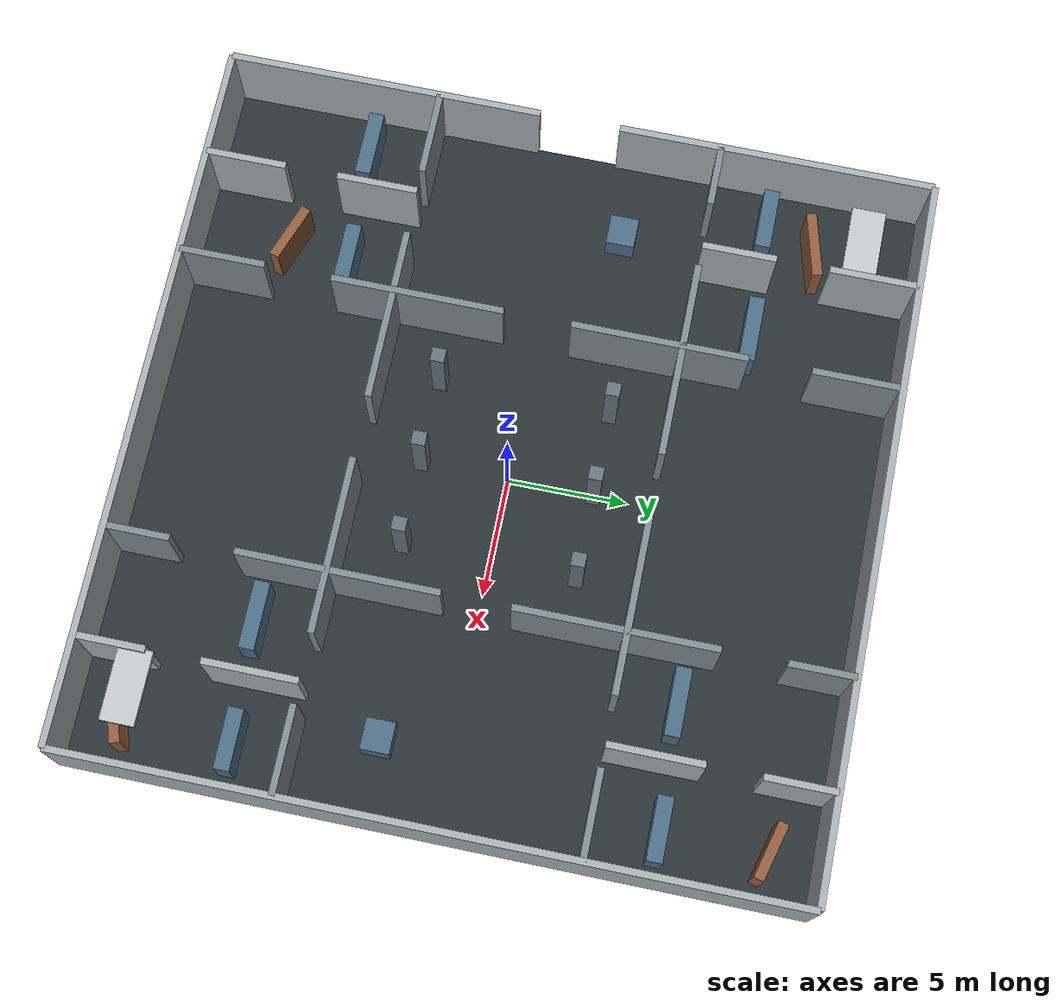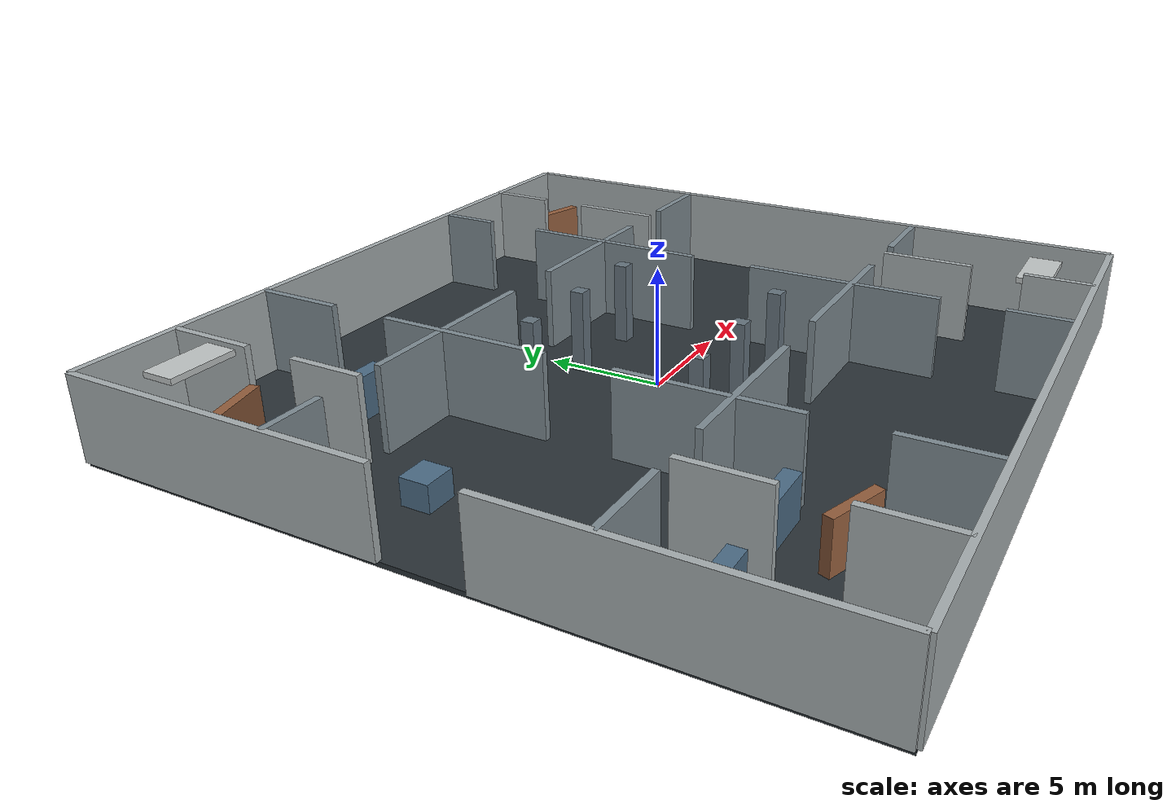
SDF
<?xml version='1.0'?>
<sdf version='1.6'>
<world name='s2_damaged_building'>
  <gravity>0 0 -9.81</gravity>
  <scene><ambient>0.62 0.64 0.66 1</ambient><background>0.72 0.75 0.78 1</background><shadows>true</shadows></scene>
  <include><uri>model://sun</uri></include>
    <model name='floor'>
    <static>true</static>
    <pose>0.0000 0.0000 -0.1000 0.000000 0.000000 0.000000</pose>
    <link name='link'>
      <collision name='collision'><geometry><box><size>30.0000 30.0000 0.2000</size></box></geometry></collision>
      <visual name='visual'><geometry><box><size>30.0000 30.0000 0.2000</size></box></geometry><material><ambient>0.170 0.200 0.220 1</ambient><diffuse>0.170 0.200 0.220 1</diffuse></material></visual>
    </link>
  </model>
  <model name='envelope_north'>
    <static>true</static>
    <pose>0.0000 15.0000 1.7500 0.000000 0.000000 0.000000</pose>
    <link name='link'>
      <collision name='collision'><geometry><box><size>30.0000 0.2800 3.5000</size></box></geometry></collision>
      <visual name='visual'><geometry><box><size>30.0000 0.2800 3.5000</size></box></geometry><material><ambient>0.660 0.690 0.700 1</ambient><diffuse>0.660 0.690 0.700 1</diffuse></material></visual>
    </link>
  </model>
  <model name='envelope_south'>
    <static>true</static>
    <pose>0.0000 -15.0000 1.7500 0.000000 0.000000 0.000000</pose>
    <link name='link'>
      <collision name='collision'><geometry><box><size>30.0000 0.2800 3.5000</size></box></geometry></collision>
      <visual name='visual'><geometry><box><size>30.0000 0.2800 3.5000</size></box></geometry><material><ambient>0.660 0.690 0.700 1</ambient><diffuse>0.660 0.690 0.700 1</diffuse></material></visual>
    </link>
  </model>
  <model name='envelope_east'>
    <static>true</static>
    <pose>15.0000 0.0000 1.7500 0.000000 0.000000 1.570796</pose>
    <link name='link'>
      <collision name='collision'><geometry><box><size>30.0000 0.2800 3.5000</size></box></geometry></collision>
      <visual name='visual'><geometry><box><size>30.0000 0.2800 3.5000</size></box></geometry><material><ambient>0.660 0.690 0.700 1</ambient><diffuse>0.660 0.690 0.700 1</diffuse></material></visual>
    </link>
  </model>
  <model name='envelope_west_00'>
    <static>true</static>
    <pose>-15.0000 -8.3500 1.7500 0.000000 0.000000 1.570796</pose>
    <link name='link'>
      <collision name='collision'><geometry><box><size>13.3000 0.2800 3.5000</size></box></geometry></collision>
      <visual name='visual'><geometry><box><size>13.3000 0.2800 3.5000</size></box></geometry><material><ambient>0.660 0.690 0.700 1</ambient><diffuse>0.660 0.690 0.700 1</diffuse></material></visual>
    </link>
  </model>
  <model name='envelope_west_01'>
    <static>true</static>
    <pose>-15.0000 8.3500 1.7500 0.000000 0.000000 1.570796</pose>
    <link name='link'>
      <collision name='collision'><geometry><box><size>13.3000 0.2800 3.5000</size></box></geometry></collision>
      <visual name='visual'><geometry><box><size>13.3000 0.2800 3.5000</size></box></geometry><material><ambient>0.660 0.690 0.700 1</ambient><diffuse>0.660 0.690 0.700 1</diffuse></material></visual>
    </link>
  </model>
  <model name='s2_north_ring_00'>
    <static>true</static>
    <pose>-13.7000 6.0000 1.7500 0.000000 0.000000 0.000000</pose>
    <link name='link'>
      <collision name='collision'><geometry><box><size>2.6000 0.2800 3.5000</size></box></geometry></collision>
      <visual name='visual'><geometry><box><size>2.6000 0.2800 3.5000</size></box></geometry><material><ambient>0.500 0.550 0.580 1</ambient><diffuse>0.500 0.550 0.580 1</diffuse></material></visual>
    </link>
  </model>
  <model name='s2_north_ring_01'>
    <static>true</static>
    <pose>-5.4500 6.0000 1.7500 0.000000 0.000000 0.000000</pose>
    <link name='link'>
      <collision name='collision'><geometry><box><size>8.3000 0.2800 3.5000</size></box></geometry></collision>
      <visual name='visual'><geometry><box><size>8.3000 0.2800 3.5000</size></box></geometry><material><ambient>0.500 0.550 0.580 1</ambient><diffuse>0.500 0.550 0.580 1</diffuse></material></visual>
    </link>
  </model>
  <model name='s2_north_ring_02'>
    <static>true</static>
    <pose>4.9500 6.0000 1.7500 0.000000 0.000000 0.000000</pose>
    <link name='link'>
      <collision name='collision'><geometry><box><size>7.3000 0.2800 3.5000</size></box></geometry></collision>
      <visual name='visual'><geometry><box><size>7.3000 0.2800 3.5000</size></box></geometry><material><ambient>0.500 0.550 0.580 1</ambient><diffuse>0.500 0.550 0.580 1</diffuse></material></visual>
    </link>
  </model>
  <model name='s2_north_ring_03'>
    <static>true</static>
    <pose>13.2000 6.0000 1.7500 0.000000 0.000000 0.000000</pose>
    <link name='link'>
      <collision name='collision'><geometry><box><size>3.6000 0.2800 3.5000</size></box></geometry></collision>
      <visual name='visual'><geometry><box><size>3.6000 0.2800 3.5000</size></box></geometry><material><ambient>0.500 0.550 0.580 1</ambient><diffuse>0.500 0.550 0.580 1</diffuse></material></visual>
    </link>
  </model>
  <model name='s2_south_ring_00'>
    <static>true</static>
    <pose>-13.2000 -6.0000 1.7500 0.000000 0.000000 0.000000</pose>
    <link name='link'>
      <collision name='collision'><geometry><box><size>3.6000 0.2800 3.5000</size></box></geometry></collision>
      <visual name='visual'><geometry><box><size>3.6000 0.2800 3.5000</size></box></geometry><material><ambient>0.500 0.550 0.580 1</ambient><diffuse>0.500 0.550 0.580 1</diffuse></material></visual>
    </link>
  </model>
  <model name='s2_south_ring_01'>
    <static>true</static>
    <pose>-4.9500 -6.0000 1.7500 0.000000 0.000000 0.000000</pose>
    <link name='link'>
      <collision name='collision'><geometry><box><size>7.3000 0.2800 3.5000</size></box></geometry></collision>
      <visual name='visual'><geometry><box><size>7.3000 0.2800 3.5000</size></box></geometry><material><ambient>0.500 0.550 0.580 1</ambient><diffuse>0.500 0.550 0.580 1</diffuse></material></visual>
    </link>
  </model>
  <model name='s2_south_ring_02'>
    <static>true</static>
    <pose>4.9500 -6.0000 1.7500 0.000000 0.000000 0.000000</pose>
    <link name='link'>
      <collision name='collision'><geometry><box><size>7.3000 0.2800 3.5000</size></box></geometry></collision>
      <visual name='visual'><geometry><box><size>7.3000 0.2800 3.5000</size></box></geometry><material><ambient>0.500 0.550 0.580 1</ambient><diffuse>0.500 0.550 0.580 1</diffuse></material></visual>
    </link>
  </model>
  <model name='s2_south_ring_03'>
    <static>true</static>
    <pose>13.2000 -6.0000 1.7500 0.000000 0.000000 0.000000</pose>
    <link name='link'>
      <collision name='collision'><geometry><box><size>3.6000 0.2800 3.5000</size></box></geometry></collision>
      <visual name='visual'><geometry><box><size>3.6000 0.2800 3.5000</size></box></geometry><material><ambient>0.500 0.550 0.580 1</ambient><diffuse>0.500 0.550 0.580 1</diffuse></material></visual>
    </link>
  </model>
  <model name='s2_west_ring_00'>
    <static>true</static>
    <pose>-6.0000 -13.2000 1.7500 0.000000 0.000000 1.570796</pose>
    <link name='link'>
      <collision name='collision'><geometry><box><size>3.6000 0.2800 3.5000</size></box></geometry></collision>
      <visual name='visual'><geometry><box><size>3.6000 0.2800 3.5000</size></box></geometry><material><ambient>0.500 0.550 0.580 1</ambient><diffuse>0.500 0.550 0.580 1</diffuse></material></visual>
    </link>
  </model>
  <model name='s2_west_ring_01'>
    <static>true</static>
    <pose>-6.0000 -5.0000 1.7500 0.000000 0.000000 1.570796</pose>
    <link name='link'>
      <collision name='collision'><geometry><box><size>7.2000 0.2800 3.5000</size></box></geometry></collision>
      <visual name='visual'><geometry><box><size>7.2000 0.2800 3.5000</size></box></geometry><material><ambient>0.500 0.550 0.580 1</ambient><diffuse>0.500 0.550 0.580 1</diffuse></material></visual>
    </link>
  </model>
  <model name='s2_west_ring_02'>
    <static>true</static>
    <pose>-6.0000 5.0500 1.7500 0.000000 0.000000 1.570796</pose>
    <link name='link'>
      <collision name='collision'><geometry><box><size>7.3000 0.2800 3.5000</size></box></geometry></collision>
      <visual name='visual'><geometry><box><size>7.3000 0.2800 3.5000</size></box></geometry><material><ambient>0.500 0.550 0.580 1</ambient><diffuse>0.500 0.550 0.580 1</diffuse></material></visual>
    </link>
  </model>
  <model name='s2_west_ring_03'>
    <static>true</static>
    <pose>-6.0000 13.1500 1.7500 0.000000 0.000000 1.570796</pose>
    <link name='link'>
      <collision name='collision'><geometry><box><size>3.7000 0.2800 3.5000</size></box></geometry></collision>
      <visual name='visual'><geometry><box><size>3.7000 0.2800 3.5000</size></box></geometry><material><ambient>0.500 0.550 0.580 1</ambient><diffuse>0.500 0.550 0.580 1</diffuse></material></visual>
    </link>
  </model>
  <model name='s2_east_ring_00'>
    <static>true</static>
    <pose>6.0000 -13.6500 1.7500 0.000000 0.000000 1.570796</pose>
    <link name='link'>
      <collision name='collision'><geometry><box><size>2.7000 0.2800 3.5000</size></box></geometry></collision>
      <visual name='visual'><geometry><box><size>2.7000 0.2800 3.5000</size></box></geometry><material><ambient>0.500 0.550 0.580 1</ambient><diffuse>0.500 0.550 0.580 1</diffuse></material></visual>
    </link>
  </model>
  <model name='s2_east_ring_01'>
    <static>true</static>
    <pose>6.0000 -5.5500 1.7500 0.000000 0.000000 1.570796</pose>
    <link name='link'>
      <collision name='collision'><geometry><box><size>8.3000 0.2800 3.5000</size></box></geometry></collision>
      <visual name='visual'><geometry><box><size>8.3000 0.2800 3.5000</size></box></geometry><material><ambient>0.500 0.550 0.580 1</ambient><diffuse>0.500 0.550 0.580 1</diffuse></material></visual>
    </link>
  </model>
  <model name='s2_east_ring_02'>
    <static>true</static>
    <pose>6.0000 5.5500 1.7500 0.000000 0.000000 1.570796</pose>
    <link name='link'>
      <collision name='collision'><geometry><box><size>8.3000 0.2800 3.5000</size></box></geometry></collision>
      <visual name='visual'><geometry><box><size>8.3000 0.2800 3.5000</size></box></geometry><material><ambient>0.500 0.550 0.580 1</ambient><diffuse>0.500 0.550 0.580 1</diffuse></material></visual>
    </link>
  </model>
  <model name='s2_east_ring_03'>
    <static>true</static>
    <pose>6.0000 13.6500 1.7500 0.000000 0.000000 1.570796</pose>
    <link name='link'>
      <collision name='collision'><geometry><box><size>2.7000 0.2800 3.5000</size></box></geometry></collision>
      <visual name='visual'><geometry><box><size>2.7000 0.2800 3.5000</size></box></geometry><material><ambient>0.500 0.550 0.580 1</ambient><diffuse>0.500 0.550 0.580 1</diffuse></material></visual>
    </link>
  </model>
  <model name='s2_north_west_rooms_00'>
    <static>true</static>
    <pose>-10.5000 7.5500 1.7500 0.000000 0.000000 1.570796</pose>
    <link name='link'>
      <collision name='collision'><geometry><box><size>3.1000 0.2800 3.5000</size></box></geometry></collision>
      <visual name='visual'><geometry><box><size>3.1000 0.2800 3.5000</size></box></geometry><material><ambient>0.660 0.690 0.700 1</ambient><diffuse>0.660 0.690 0.700 1</diffuse></material></visual>
    </link>
  </model>
  <model name='s2_north_west_rooms_01'>
    <static>true</static>
    <pose>-10.5000 13.1500 1.7500 0.000000 0.000000 1.570796</pose>
    <link name='link'>
      <collision name='collision'><geometry><box><size>3.7000 0.2800 3.5000</size></box></geometry></collision>
      <visual name='visual'><geometry><box><size>3.7000 0.2800 3.5000</size></box></geometry><material><ambient>0.660 0.690 0.700 1</ambient><diffuse>0.660 0.690 0.700 1</diffuse></material></visual>
    </link>
  </model>
  <model name='s2_north_east_rooms_00'>
    <static>true</static>
    <pose>10.5000 7.9500 1.7500 0.000000 0.000000 1.570796</pose>
    <link name='link'>
      <collision name='collision'><geometry><box><size>3.9000 0.2800 3.5000</size></box></geometry></collision>
      <visual name='visual'><geometry><box><size>3.9000 0.2800 3.5000</size></box></geometry><material><ambient>0.660 0.690 0.700 1</ambient><diffuse>0.660 0.690 0.700 1</diffuse></material></visual>
    </link>
  </model>
  <model name='s2_north_east_rooms_01'>
    <static>true</static>
    <pose>10.5000 13.5500 1.7500 0.000000 0.000000 1.570796</pose>
    <link name='link'>
      <collision name='collision'><geometry><box><size>2.9000 0.2800 3.5000</size></box></geometry></collision>
      <visual name='visual'><geometry><box><size>2.9000 0.2800 3.5000</size></box></geometry><material><ambient>0.660 0.690 0.700 1</ambient><diffuse>0.660 0.690 0.700 1</diffuse></material></visual>
    </link>
  </model>
  <model name='s2_south_west_rooms_00'>
    <static>true</static>
    <pose>-10.5000 -13.3000 1.7500 0.000000 0.000000 1.570796</pose>
    <link name='link'>
      <collision name='collision'><geometry><box><size>3.4000 0.2800 3.5000</size></box></geometry></collision>
      <visual name='visual'><geometry><box><size>3.4000 0.2800 3.5000</size></box></geometry><material><ambient>0.660 0.690 0.700 1</ambient><diffuse>0.660 0.690 0.700 1</diffuse></material></visual>
    </link>
  </model>
  <model name='s2_south_west_rooms_01'>
    <static>true</static>
    <pose>-10.5000 -7.7000 1.7500 0.000000 0.000000 1.570796</pose>
    <link name='link'>
      <collision name='collision'><geometry><box><size>3.4000 0.2800 3.5000</size></box></geometry></collision>
      <visual name='visual'><geometry><box><size>3.4000 0.2800 3.5000</size></box></geometry><material><ambient>0.660 0.690 0.700 1</ambient><diffuse>0.660 0.690 0.700 1</diffuse></material></visual>
    </link>
  </model>
  <model name='s2_south_east_rooms_00'>
    <static>true</static>
    <pose>10.5000 -13.5500 1.7500 0.000000 0.000000 1.570796</pose>
    <link name='link'>
      <collision name='collision'><geometry><box><size>2.9000 0.2800 3.5000</size></box></geometry></collision>
      <visual name='visual'><geometry><box><size>2.9000 0.2800 3.5000</size></box></geometry><material><ambient>0.660 0.690 0.700 1</ambient><diffuse>0.660 0.690 0.700 1</diffuse></material></visual>
    </link>
  </model>
  <model name='s2_south_east_rooms_01'>
    <static>true</static>
    <pose>10.5000 -7.9500 1.7500 0.000000 0.000000 1.570796</pose>
    <link name='link'>
      <collision name='collision'><geometry><box><size>3.9000 0.2800 3.5000</size></box></geometry></collision>
      <visual name='visual'><geometry><box><size>3.9000 0.2800 3.5000</size></box></geometry><material><ambient>0.660 0.690 0.700 1</ambient><diffuse>0.660 0.690 0.700 1</diffuse></material></visual>
    </link>
  </model>
  <model name='s2_partial_collapse_00'>
    <static>true</static>
    <pose>-12.1000 10.6000 1.0500 0.000000 0.000000 0.250000</pose>
    <link name='link'>
      <collision name='collision'><geometry><box><size>2.8000 0.4200 2.1000</size></box></geometry></collision>
      <visual name='visual'><geometry><box><size>2.8000 0.4200 2.1000</size></box></geometry><material><ambient>0.580 0.370 0.240 1</ambient><diffuse>0.580 0.370 0.240 1</diffuse></material></visual>
    </link>
  </model>
  <model name='s2_partial_collapse_01'>
    <static>true</static>
    <pose>-8.2000 -11.0000 1.0500 0.000000 0.000000 -0.340000</pose>
    <link name='link'>
      <collision name='collision'><geometry><box><size>2.5000 0.4200 2.1000</size></box></geometry></collision>
      <visual name='visual'><geometry><box><size>2.5000 0.4200 2.1000</size></box></geometry><material><ambient>0.580 0.370 0.240 1</ambient><diffuse>0.580 0.370 0.240 1</diffuse></material></visual>
    </link>
  </model>
  <model name='s2_partial_collapse_02'>
    <static>true</static>
    <pose>13.0000 13.0000 1.0500 0.000000 0.000000 -0.260000</pose>
    <link name='link'>
      <collision name='collision'><geometry><box><size>2.4000 0.4200 2.1000</size></box></geometry></collision>
      <visual name='visual'><geometry><box><size>2.4000 0.4200 2.1000</size></box></geometry><material><ambient>0.580 0.370 0.240 1</ambient><diffuse>0.580 0.370 0.240 1</diffuse></material></visual>
    </link>
  </model>
  <model name='s2_partial_collapse_03'>
    <static>true</static>
    <pose>13.0000 -13.0000 1.0500 0.000000 0.000000 0.310000</pose>
    <link name='link'>
      <collision name='collision'><geometry><box><size>2.3000 0.4200 2.1000</size></box></geometry></collision>
      <visual name='visual'><geometry><box><size>2.3000 0.4200 2.1000</size></box></geometry><material><ambient>0.580 0.370 0.240 1</ambient><diffuse>0.580 0.370 0.240 1</diffuse></material></visual>
    </link>
  </model>
  <model name='s2_atrium_column_00'>
    <static>true</static>
    <pose>-3.6000 3.6000 1.7500 0.000000 0.000000 0.000000</pose>
    <link name='link'>
      <collision name='collision'><geometry><box><size>0.5800 0.5800 3.5000</size></box></geometry></collision>
      <visual name='visual'><geometry><box><size>0.5800 0.5800 3.5000</size></box></geometry><material><ambient>0.400 0.460 0.500 1</ambient><diffuse>0.400 0.460 0.500 1</diffuse></material></visual>
    </link>
  </model>
  <model name='s2_atrium_column_01'>
    <static>true</static>
    <pose>0.0000 3.6000 1.7500 0.000000 0.000000 0.000000</pose>
    <link name='link'>
      <collision name='collision'><geometry><box><size>0.5800 0.5800 3.5000</size></box></geometry></collision>
      <visual name='visual'><geometry><box><size>0.5800 0.5800 3.5000</size></box></geometry><material><ambient>0.400 0.460 0.500 1</ambient><diffuse>0.400 0.460 0.500 1</diffuse></material></visual>
    </link>
  </model>
  <model name='s2_atrium_column_02'>
    <static>true</static>
    <pose>3.6000 3.6000 1.7500 0.000000 0.000000 0.000000</pose>
    <link name='link'>
      <collision name='collision'><geometry><box><size>0.5800 0.5800 3.5000</size></box></geometry></collision>
      <visual name='visual'><geometry><box><size>0.5800 0.5800 3.5000</size></box></geometry><material><ambient>0.400 0.460 0.500 1</ambient><diffuse>0.400 0.460 0.500 1</diffuse></material></visual>
    </link>
  </model>
  <model name='s2_atrium_column_03'>
    <static>true</static>
    <pose>-3.6000 -3.6000 1.7500 0.000000 0.000000 0.000000</pose>
    <link name='link'>
      <collision name='collision'><geometry><box><size>0.5800 0.5800 3.5000</size></box></geometry></collision>
      <visual name='visual'><geometry><box><size>0.5800 0.5800 3.5000</size></box></geometry><material><ambient>0.400 0.460 0.500 1</ambient><diffuse>0.400 0.460 0.500 1</diffuse></material></visual>
    </link>
  </model>
  <model name='s2_atrium_column_04'>
    <static>true</static>
    <pose>0.0000 -3.6000 1.7500 0.000000 0.000000 0.000000</pose>
    <link name='link'>
      <collision name='collision'><geometry><box><size>0.5800 0.5800 3.5000</size></box></geometry></collision>
      <visual name='visual'><geometry><box><size>0.5800 0.5800 3.5000</size></box></geometry><material><ambient>0.400 0.460 0.500 1</ambient><diffuse>0.400 0.460 0.500 1</diffuse></material></visual>
    </link>
  </model>
  <model name='s2_atrium_column_05'>
    <static>true</static>
    <pose>3.6000 -3.6000 1.7500 0.000000 0.000000 0.000000</pose>
    <link name='link'>
      <collision name='collision'><geometry><box><size>0.5800 0.5800 3.5000</size></box></geometry></collision>
      <visual name='visual'><geometry><box><size>0.5800 0.5800 3.5000</size></box></geometry><material><ambient>0.400 0.460 0.500 1</ambient><diffuse>0.400 0.460 0.500 1</diffuse></material></visual>
    </link>
  </model>
  <model name='s2_equipment_00'>
    <static>true</static>
    <pose>-13.0000 8.5000 0.9000 0.000000 0.000000 0.000000</pose>
    <link name='link'>
      <collision name='collision'><geometry><box><size>2.6000 0.6500 1.8000</size></box></geometry></collision>
      <visual name='visual'><geometry><box><size>2.6000 0.6500 1.8000</size></box></geometry><material><ambient>0.300 0.430 0.530 1</ambient><diffuse>0.300 0.430 0.530 1</diffuse></material></visual>
    </link>
  </model>
  <model name='s2_equipment_01'>
    <static>true</static>
    <pose>-8.0000 8.7000 0.9000 0.000000 0.000000 0.000000</pose>
    <link name='link'>
      <collision name='collision'><geometry><box><size>2.8000 0.6500 1.8000</size></box></geometry></collision>
      <visual name='visual'><geometry><box><size>2.8000 0.6500 1.8000</size></box></geometry><material><ambient>0.300 0.430 0.530 1</ambient><diffuse>0.300 0.430 0.530 1</diffuse></material></visual>
    </link>
  </model>
  <model name='s2_equipment_02'>
    <static>true</static>
    <pose>8.0000 8.5000 0.9000 0.000000 0.000000 0.000000</pose>
    <link name='link'>
      <collision name='collision'><geometry><box><size>2.8000 0.6500 1.8000</size></box></geometry></collision>
      <visual name='visual'><geometry><box><size>2.8000 0.6500 1.8000</size></box></geometry><material><ambient>0.300 0.430 0.530 1</ambient><diffuse>0.300 0.430 0.530 1</diffuse></material></visual>
    </link>
  </model>
  <model name='s2_equipment_03'>
    <static>true</static>
    <pose>13.0000 8.7000 0.9000 0.000000 0.000000 0.000000</pose>
    <link name='link'>
      <collision name='collision'><geometry><box><size>2.6000 0.6500 1.8000</size></box></geometry></collision>
      <visual name='visual'><geometry><box><size>2.6000 0.6500 1.8000</size></box></geometry><material><ambient>0.300 0.430 0.530 1</ambient><diffuse>0.300 0.430 0.530 1</diffuse></material></visual>
    </link>
  </model>
  <model name='s2_equipment_04'>
    <static>true</static>
    <pose>-13.0000 -8.7000 0.9000 0.000000 0.000000 0.000000</pose>
    <link name='link'>
      <collision name='collision'><geometry><box><size>2.8000 0.6500 1.8000</size></box></geometry></collision>
      <visual name='visual'><geometry><box><size>2.8000 0.6500 1.8000</size></box></geometry><material><ambient>0.300 0.430 0.530 1</ambient><diffuse>0.300 0.430 0.530 1</diffuse></material></visual>
    </link>
  </model>
  <model name='s2_equipment_05'>
    <static>true</static>
    <pose>-8.0000 -8.5000 0.9000 0.000000 0.000000 0.000000</pose>
    <link name='link'>
      <collision name='collision'><geometry><box><size>2.4000 0.6500 1.8000</size></box></geometry></collision>
      <visual name='visual'><geometry><box><size>2.4000 0.6500 1.8000</size></box></geometry><material><ambient>0.300 0.430 0.530 1</ambient><diffuse>0.300 0.430 0.530 1</diffuse></material></visual>
    </link>
  </model>
  <model name='s2_equipment_06'>
    <static>true</static>
    <pose>8.0000 -8.6000 0.9000 0.000000 0.000000 0.000000</pose>
    <link name='link'>
      <collision name='collision'><geometry><box><size>2.8000 0.6500 1.8000</size></box></geometry></collision>
      <visual name='visual'><geometry><box><size>2.8000 0.6500 1.8000</size></box></geometry><material><ambient>0.300 0.430 0.530 1</ambient><diffuse>0.300 0.430 0.530 1</diffuse></material></visual>
    </link>
  </model>
  <model name='s2_equipment_07'>
    <static>true</static>
    <pose>13.0000 -8.4000 0.9000 0.000000 0.000000 0.000000</pose>
    <link name='link'>
      <collision name='collision'><geometry><box><size>2.5000 0.6500 1.8000</size></box></geometry></collision>
      <visual name='visual'><geometry><box><size>2.5000 0.6500 1.8000</size></box></geometry><material><ambient>0.300 0.430 0.530 1</ambient><diffuse>0.300 0.430 0.530 1</diffuse></material></visual>
    </link>
  </model>
  <model name='s2_equipment_08'>
    <static>true</static>
    <pose>-11.5000 2.6000 0.5500 0.000000 0.000000 0.000000</pose>
    <link name='link'>
      <collision name='collision'><geometry><box><size>1.3000 1.2000 1.1000</size></box></geometry></collision>
      <visual name='visual'><geometry><box><size>1.3000 1.2000 1.1000</size></box></geometry><material><ambient>0.300 0.430 0.530 1</ambient><diffuse>0.300 0.430 0.530 1</diffuse></material></visual>
    </link>
  </model>
  <model name='s2_equipment_09'>
    <static>true</static>
    <pose>11.6000 -2.8000 0.5500 0.000000 0.000000 0.000000</pose>
    <link name='link'>
      <collision name='collision'><geometry><box><size>1.3000 1.2000 1.1000</size></box></geometry></collision>
      <visual name='visual'><geometry><box><size>1.3000 1.2000 1.1000</size></box></geometry><material><ambient>0.300 0.430 0.530 1</ambient><diffuse>0.300 0.430 0.530 1</diffuse></material></visual>
    </link>
  </model>
  <model name='s2_ceiling_remnant_00'>
    <static>true</static>
    <pose>-12.0000 12.5000 3.1800 0.000000 0.000000 0.000000</pose>
    <link name='link'>
      <collision name='collision'><geometry><box><size>3.0000 1.4000 0.2400</size></box></geometry></collision>
      <visual name='visual'><geometry><box><size>3.0000 1.4000 0.2400</size></box></geometry><material><ambient>0.760 0.780 0.780 1</ambient><diffuse>0.760 0.780 0.780 1</diffuse></material></visual>
    </link>
  </model>
  <model name='s2_ceiling_remnant_01'>
    <static>true</static>
    <pose>12.0000 -12.5000 3.1800 0.000000 0.000000 0.000000</pose>
    <link name='link'>
      <collision name='collision'><geometry><box><size>3.0000 1.4000 0.2400</size></box></geometry></collision>
      <visual name='visual'><geometry><box><size>3.0000 1.4000 0.2400</size></box></geometry><material><ambient>0.760 0.780 0.780 1</ambient><diffuse>0.760 0.780 0.780 1</diffuse></material></visual>
    </link>
  </model>
</world>
</sdf>
